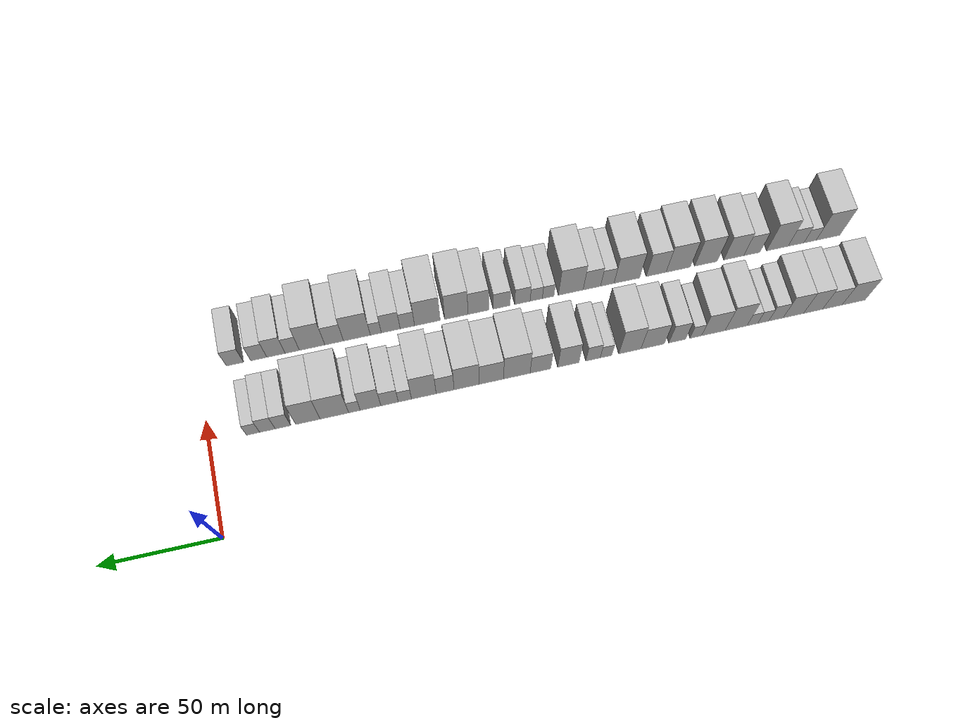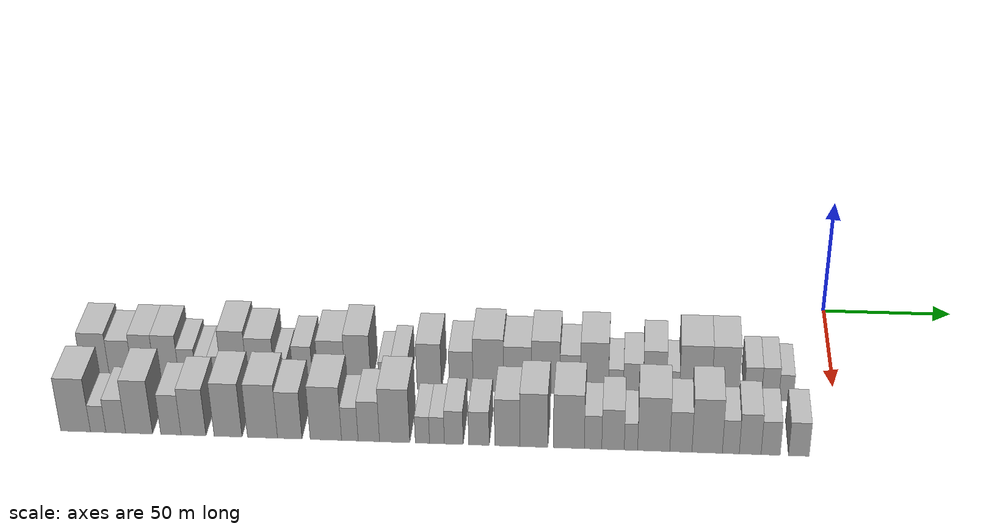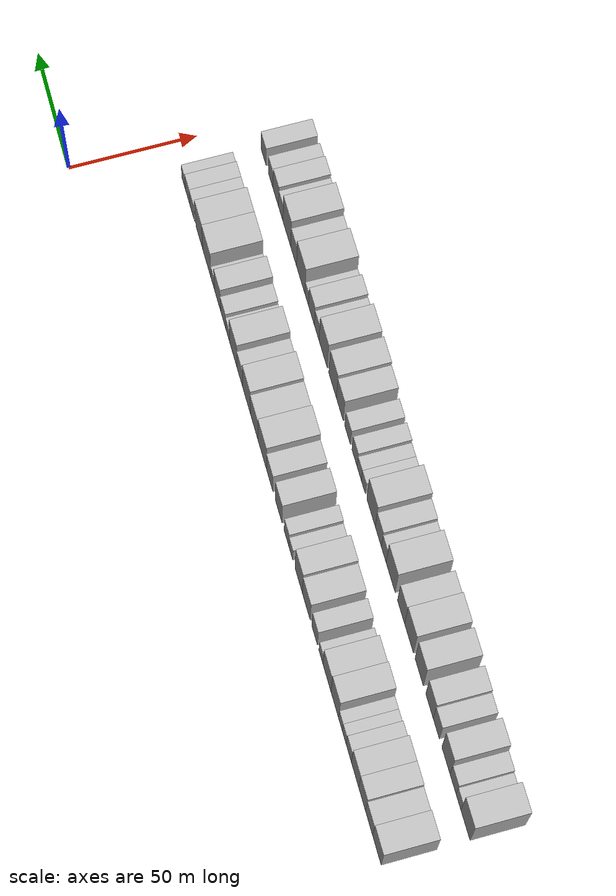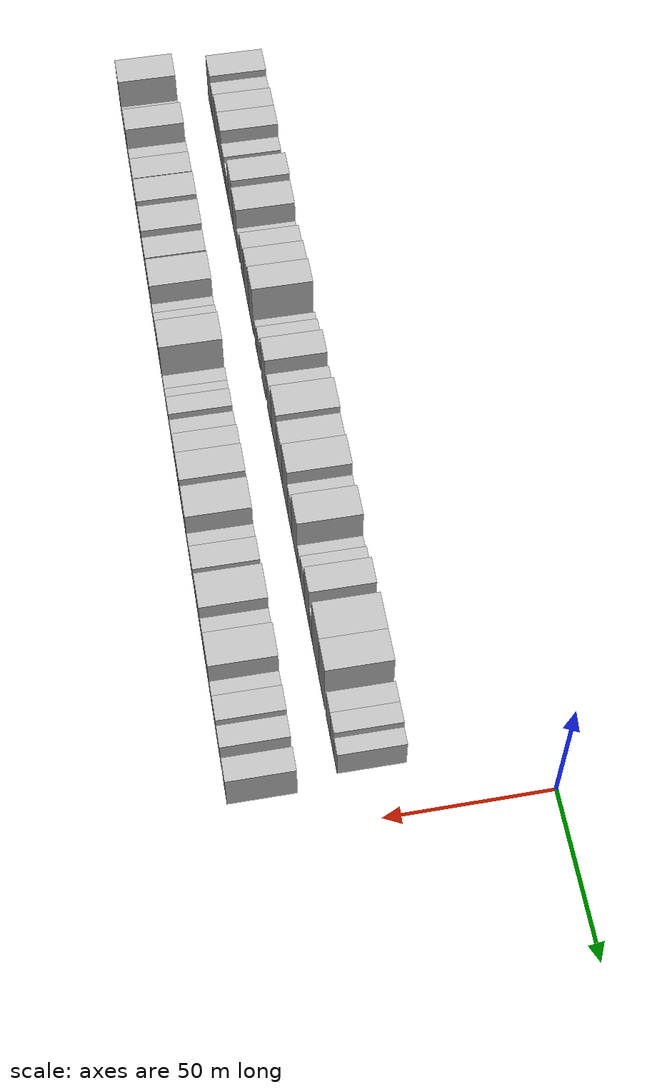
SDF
<sdf version="1.6">
 <world name="default">
  <model name="building_1">
   <static>1</static>
   <pose>50.0000 -278.7574 0 0.000000 0.000000 0.000000</pose>
   <link name="link">
    <pose>0 0 10.50 0 0 0</pose>
    <collision name="collision"><geometry><box><size>20.0000 10.4853 21.0000</size></box></geometry></collision>
    <visual name="visual">
     <cast_shadows>0</cast_shadows>
     <geometry><box><size>20.0000 10.4853 21.0000</size></box></geometry>
     <material>
      <script>
       <uri>model://HANNAS_wall/materials/scripts</uri>
       <uri>model://HANNAS_wall/materials/textures</uri>
       <name>vrc/HANNAS_wall</name>
      </script>
     </material>
    </visual>
   </link>
  </model>
  <model name="building_2">
   <static>1</static>
   <pose>50.0000 -269.0719 0 0.000000 0.000000 0.000000</pose>
   <link name="link">
    <pose>0 0 9.00 0 0 0</pose>
    <collision name="collision"><geometry><box><size>20.0000 8.8856 18.0000</size></box></geometry></collision>
    <visual name="visual">
     <cast_shadows>0</cast_shadows>
     <geometry><box><size>20.0000 8.8856 18.0000</size></box></geometry>
     <material>
      <script>
       <uri>model://HANNAS_wall/materials/scripts</uri>
       <uri>model://HANNAS_wall/materials/textures</uri>
       <name>vrc/HANNAS_wall</name>
      </script>
     </material>
    </visual>
   </link>
  </model>
  <model name="building_3">
   <static>1</static>
   <pose>50.0000 -260.3548 0 0.000000 0.000000 0.000000</pose>
   <link name="link">
    <pose>0 0 10.50 0 0 0</pose>
    <collision name="collision"><geometry><box><size>20.0000 8.5487 21.0000</size></box></geometry></collision>
    <visual name="visual">
     <cast_shadows>0</cast_shadows>
     <geometry><box><size>20.0000 8.5487 21.0000</size></box></geometry>
     <material>
      <script>
       <uri>model://HANNAS_wall/materials/scripts</uri>
       <uri>model://HANNAS_wall/materials/textures</uri>
       <name>vrc/HANNAS_wall</name>
      </script>
     </material>
    </visual>
   </link>
  </model>
  <model name="building_4">
   <static>1</static>
   <pose>50.0000 -251.4700 0 0.000000 0.000000 0.000000</pose>
   <link name="link">
    <pose>0 0 10.50 0 0 0</pose>
    <collision name="collision"><geometry><box><size>20.0000 9.2208 21.0000</size></box></geometry></collision>
    <visual name="visual">
     <cast_shadows>0</cast_shadows>
     <geometry><box><size>20.0000 9.2208 21.0000</size></box></geometry>
     <material>
      <script>
       <uri>model://HANNAS_wall/materials/scripts</uri>
       <uri>model://HANNAS_wall/materials/textures</uri>
       <name>vrc/HANNAS_wall</name>
      </script>
     </material>
    </visual>
   </link>
  </model>
  <model name="building_5">
   <static>1</static>
   <pose>50.0000 -243.5951 0 0.000000 0.000000 0.000000</pose>
   <link name="link">
    <pose>0 0 7.50 0 0 0</pose>
    <collision name="collision"><geometry><box><size>20.0000 6.5289 15.0000</size></box></geometry></collision>
    <visual name="visual">
     <cast_shadows>0</cast_shadows>
     <geometry><box><size>20.0000 6.5289 15.0000</size></box></geometry>
     <material>
      <script>
       <uri>model://HANNAS_wall/materials/scripts</uri>
       <uri>model://HANNAS_wall/materials/textures</uri>
       <name>vrc/HANNAS_wall</name>
      </script>
     </material>
    </visual>
   </link>
  </model>
  <model name="building_6">
   <static>1</static>
   <pose>50.0000 -237.8679 0 0.000000 0.000000 0.000000</pose>
   <link name="link">
    <pose>0 0 6.00 0 0 0</pose>
    <collision name="collision"><geometry><box><size>20.0000 4.9256 12.0000</size></box></geometry></collision>
    <visual name="visual">
     <cast_shadows>0</cast_shadows>
     <geometry><box><size>20.0000 4.9256 12.0000</size></box></geometry>
     <material>
      <script>
       <uri>model://HANNAS_wall/materials/scripts</uri>
       <uri>model://HANNAS_wall/materials/textures</uri>
       <name>vrc/HANNAS_wall</name>
      </script>
     </material>
    </visual>
   </link>
  </model>
  <model name="building_7">
   <static>1</static>
   <pose>50.0000 -233.0020 0 0.000000 0.000000 0.000000</pose>
   <link name="link">
    <pose>0 0 6.00 0 0 0</pose>
    <collision name="collision"><geometry><box><size>20.0000 4.8062 12.0000</size></box></geometry></collision>
    <visual name="visual">
     <cast_shadows>0</cast_shadows>
     <geometry><box><size>20.0000 4.8062 12.0000</size></box></geometry>
     <material>
      <script>
       <uri>model://HANNAS_wall/materials/scripts</uri>
       <uri>model://HANNAS_wall/materials/textures</uri>
       <name>vrc/HANNAS_wall</name>
      </script>
     </material>
    </visual>
   </link>
  </model>
  <model name="building_8">
   <static>1</static>
   <pose>50.0000 -225.7242 0 0.000000 0.000000 0.000000</pose>
   <link name="link">
    <pose>0 0 12.00 0 0 0</pose>
    <collision name="collision"><geometry><box><size>20.0000 9.7495 24.0000</size></box></geometry></collision>
    <visual name="visual">
     <cast_shadows>0</cast_shadows>
     <geometry><box><size>20.0000 9.7495 24.0000</size></box></geometry>
     <material>
      <script>
       <uri>model://HANNAS_wall/materials/scripts</uri>
       <uri>model://HANNAS_wall/materials/textures</uri>
       <name>vrc/HANNAS_wall</name>
      </script>
     </material>
    </visual>
   </link>
  </model>
  <model name="building_9">
   <static>1</static>
   <pose>50.0000 -215.6198 0 0.000000 0.000000 0.000000</pose>
   <link name="link">
    <pose>0 0 10.50 0 0 0</pose>
    <collision name="collision"><geometry><box><size>20.0000 10.4592 21.0000</size></box></geometry></collision>
    <visual name="visual">
     <cast_shadows>0</cast_shadows>
     <geometry><box><size>20.0000 10.4592 21.0000</size></box></geometry>
     <material>
      <script>
       <uri>model://HANNAS_wall/materials/scripts</uri>
       <uri>model://HANNAS_wall/materials/textures</uri>
       <name>vrc/HANNAS_wall</name>
      </script>
     </material>
    </visual>
   </link>
  </model>
  <model name="building_10">
   <static>1</static>
   <pose>50.0000 -207.8413 0 0.000000 0.000000 0.000000</pose>
   <link name="link">
    <pose>0 0 6.00 0 0 0</pose>
    <collision name="collision"><geometry><box><size>20.0000 5.0979 12.0000</size></box></geometry></collision>
    <visual name="visual">
     <cast_shadows>0</cast_shadows>
     <geometry><box><size>20.0000 5.0979 12.0000</size></box></geometry>
     <material>
      <script>
       <uri>model://HANNAS_wall/materials/scripts</uri>
       <uri>model://HANNAS_wall/materials/textures</uri>
       <name>vrc/HANNAS_wall</name>
      </script>
     </material>
    </visual>
   </link>
  </model>
  <model name="building_11">
   <static>1</static>
   <pose>50.0000 -199.5938 0 0.000000 0.000000 0.000000</pose>
   <link name="link">
    <pose>0 0 9.00 0 0 0</pose>
    <collision name="collision"><geometry><box><size>20.0000 7.3971 18.0000</size></box></geometry></collision>
    <visual name="visual">
     <cast_shadows>0</cast_shadows>
     <geometry><box><size>20.0000 7.3971 18.0000</size></box></geometry>
     <material>
      <script>
       <uri>model://HANNAS_wall/materials/scripts</uri>
       <uri>model://HANNAS_wall/materials/textures</uri>
       <name>vrc/HANNAS_wall</name>
      </script>
     </material>
    </visual>
   </link>
  </model>
  <model name="building_12">
   <static>1</static>
   <pose>50.0000 -188.7349 0 0.000000 0.000000 0.000000</pose>
   <link name="link">
    <pose>0 0 10.50 0 0 0</pose>
    <collision name="collision"><geometry><box><size>20.0000 10.3207 21.0000</size></box></geometry></collision>
    <visual name="visual">
     <cast_shadows>0</cast_shadows>
     <geometry><box><size>20.0000 10.3207 21.0000</size></box></geometry>
     <material>
      <script>
       <uri>model://HANNAS_wall/materials/scripts</uri>
       <uri>model://HANNAS_wall/materials/textures</uri>
       <name>vrc/HANNAS_wall</name>
      </script>
     </material>
    </visual>
   </link>
  </model>
  <model name="building_13">
   <static>1</static>
   <pose>50.0000 -178.7163 0 0.000000 0.000000 0.000000</pose>
   <link name="link">
    <pose>0 0 12.00 0 0 0</pose>
    <collision name="collision"><geometry><box><size>20.0000 9.7165 24.0000</size></box></geometry></collision>
    <visual name="visual">
     <cast_shadows>0</cast_shadows>
     <geometry><box><size>20.0000 9.7165 24.0000</size></box></geometry>
     <material>
      <script>
       <uri>model://HANNAS_wall/materials/scripts</uri>
       <uri>model://HANNAS_wall/materials/textures</uri>
       <name>vrc/HANNAS_wall</name>
      </script>
     </material>
    </visual>
   </link>
  </model>
  <model name="building_14">
   <static>1</static>
   <pose>50.0000 -168.2957 0 0.000000 0.000000 0.000000</pose>
   <link name="link">
    <pose>0 0 6.00 0 0 0</pose>
    <collision name="collision"><geometry><box><size>20.0000 5.1247 12.0000</size></box></geometry></collision>
    <visual name="visual">
     <cast_shadows>0</cast_shadows>
     <geometry><box><size>20.0000 5.1247 12.0000</size></box></geometry>
     <material>
      <script>
       <uri>model://HANNAS_wall/materials/scripts</uri>
       <uri>model://HANNAS_wall/materials/textures</uri>
       <name>vrc/HANNAS_wall</name>
      </script>
     </material>
    </visual>
   </link>
  </model>
  <model name="building_15">
   <static>1</static>
   <pose>50.0000 -162.6026 0 0.000000 0.000000 0.000000</pose>
   <link name="link">
    <pose>0 0 7.50 0 0 0</pose>
    <collision name="collision"><geometry><box><size>20.0000 6.2617 15.0000</size></box></geometry></collision>
    <visual name="visual">
     <cast_shadows>0</cast_shadows>
     <geometry><box><size>20.0000 6.2617 15.0000</size></box></geometry>
     <material>
      <script>
       <uri>model://HANNAS_wall/materials/scripts</uri>
       <uri>model://HANNAS_wall/materials/textures</uri>
       <name>vrc/HANNAS_wall</name>
      </script>
     </material>
    </visual>
   </link>
  </model>
  <model name="building_16">
   <static>1</static>
   <pose>50.0000 -151.8582 0 0.000000 0.000000 0.000000</pose>
   <link name="link">
    <pose>0 0 10.50 0 0 0</pose>
    <collision name="collision"><geometry><box><size>20.0000 9.2272 21.0000</size></box></geometry></collision>
    <visual name="visual">
     <cast_shadows>0</cast_shadows>
     <geometry><box><size>20.0000 9.2272 21.0000</size></box></geometry>
     <material>
      <script>
       <uri>model://HANNAS_wall/materials/scripts</uri>
       <uri>model://HANNAS_wall/materials/textures</uri>
       <name>vrc/HANNAS_wall</name>
      </script>
     </material>
    </visual>
   </link>
  </model>
  <model name="building_17">
   <static>1</static>
   <pose>50.0000 -139.7778 0 0.000000 0.000000 0.000000</pose>
   <link name="link">
    <pose>0 0 9.00 0 0 0</pose>
    <collision name="collision"><geometry><box><size>20.0000 8.9334 18.0000</size></box></geometry></collision>
    <visual name="visual">
     <cast_shadows>0</cast_shadows>
     <geometry><box><size>20.0000 8.9334 18.0000</size></box></geometry>
     <material>
      <script>
       <uri>model://HANNAS_wall/materials/scripts</uri>
       <uri>model://HANNAS_wall/materials/textures</uri>
       <name>vrc/HANNAS_wall</name>
      </script>
     </material>
    </visual>
   </link>
  </model>
  <model name="building_18">
   <static>1</static>
   <pose>50.0000 -129.5712 0 0.000000 0.000000 0.000000</pose>
   <link name="link">
    <pose>0 0 12.00 0 0 0</pose>
    <collision name="collision"><geometry><box><size>20.0000 11.4799 24.0000</size></box></geometry></collision>
    <visual name="visual">
     <cast_shadows>0</cast_shadows>
     <geometry><box><size>20.0000 11.4799 24.0000</size></box></geometry>
     <material>
      <script>
       <uri>model://HANNAS_wall/materials/scripts</uri>
       <uri>model://HANNAS_wall/materials/textures</uri>
       <name>vrc/HANNAS_wall</name>
      </script>
     </material>
    </visual>
   </link>
  </model>
  <model name="building_19">
   <static>1</static>
   <pose>50.0000 -118.5897 0 0.000000 0.000000 0.000000</pose>
   <link name="link">
    <pose>0 0 10.50 0 0 0</pose>
    <collision name="collision"><geometry><box><size>20.0000 10.4830 21.0000</size></box></geometry></collision>
    <visual name="visual">
     <cast_shadows>0</cast_shadows>
     <geometry><box><size>20.0000 10.4830 21.0000</size></box></geometry>
     <material>
      <script>
       <uri>model://HANNAS_wall/materials/scripts</uri>
       <uri>model://HANNAS_wall/materials/textures</uri>
       <name>vrc/HANNAS_wall</name>
      </script>
     </material>
    </visual>
   </link>
  </model>
  <model name="building_20">
   <static>1</static>
   <pose>50.0000 -107.9969 0 0.000000 0.000000 0.000000</pose>
   <link name="link">
    <pose>0 0 12.00 0 0 0</pose>
    <collision name="collision"><geometry><box><size>20.0000 10.7027 24.0000</size></box></geometry></collision>
    <visual name="visual">
     <cast_shadows>0</cast_shadows>
     <geometry><box><size>20.0000 10.7027 24.0000</size></box></geometry>
     <material>
      <script>
       <uri>model://HANNAS_wall/materials/scripts</uri>
       <uri>model://HANNAS_wall/materials/textures</uri>
       <name>vrc/HANNAS_wall</name>
      </script>
     </material>
    </visual>
   </link>
  </model>
  <model name="building_21">
   <static>1</static>
   <pose>50.0000 -98.8273 0 0.000000 0.000000 0.000000</pose>
   <link name="link">
    <pose>0 0 9.00 0 0 0</pose>
    <collision name="collision"><geometry><box><size>20.0000 7.6364 18.0000</size></box></geometry></collision>
    <visual name="visual">
     <cast_shadows>0</cast_shadows>
     <geometry><box><size>20.0000 7.6364 18.0000</size></box></geometry>
     <material>
      <script>
       <uri>model://HANNAS_wall/materials/scripts</uri>
       <uri>model://HANNAS_wall/materials/textures</uri>
       <name>vrc/HANNAS_wall</name>
      </script>
     </material>
    </visual>
   </link>
  </model>
  <model name="building_22">
   <static>1</static>
   <pose>50.0000 -89.7715 0 0.000000 0.000000 0.000000</pose>
   <link name="link">
    <pose>0 0 12.00 0 0 0</pose>
    <collision name="collision"><geometry><box><size>20.0000 10.4751 24.0000</size></box></geometry></collision>
    <visual name="visual">
     <cast_shadows>0</cast_shadows>
     <geometry><box><size>20.0000 10.4751 24.0000</size></box></geometry>
     <material>
      <script>
       <uri>model://HANNAS_wall/materials/scripts</uri>
       <uri>model://HANNAS_wall/materials/textures</uri>
       <name>vrc/HANNAS_wall</name>
      </script>
     </material>
    </visual>
   </link>
  </model>
  <model name="building_23">
   <static>1</static>
   <pose>50.0000 -81.7449 0 0.000000 0.000000 0.000000</pose>
   <link name="link">
    <pose>0 0 6.00 0 0 0</pose>
    <collision name="collision"><geometry><box><size>20.0000 5.5781 12.0000</size></box></geometry></collision>
    <visual name="visual">
     <cast_shadows>0</cast_shadows>
     <geometry><box><size>20.0000 5.5781 12.0000</size></box></geometry>
     <material>
      <script>
       <uri>model://HANNAS_wall/materials/scripts</uri>
       <uri>model://HANNAS_wall/materials/textures</uri>
       <name>vrc/HANNAS_wall</name>
      </script>
     </material>
    </visual>
   </link>
  </model>
  <model name="building_24">
   <static>1</static>
   <pose>50.0000 -75.2791 0 0.000000 0.000000 0.000000</pose>
   <link name="link">
    <pose>0 0 7.50 0 0 0</pose>
    <collision name="collision"><geometry><box><size>20.0000 7.3536 15.0000</size></box></geometry></collision>
    <visual name="visual">
     <cast_shadows>0</cast_shadows>
     <geometry><box><size>20.0000 7.3536 15.0000</size></box></geometry>
     <material>
      <script>
       <uri>model://HANNAS_wall/materials/scripts</uri>
       <uri>model://HANNAS_wall/materials/textures</uri>
       <name>vrc/HANNAS_wall</name>
      </script>
     </material>
    </visual>
   </link>
  </model>
  <model name="building_25">
   <static>1</static>
   <pose>50.0000 -67.2632 0 0.000000 0.000000 0.000000</pose>
   <link name="link">
    <pose>0 0 10.50 0 0 0</pose>
    <collision name="collision"><geometry><box><size>20.0000 8.6782 21.0000</size></box></geometry></collision>
    <visual name="visual">
     <cast_shadows>0</cast_shadows>
     <geometry><box><size>20.0000 8.6782 21.0000</size></box></geometry>
     <material>
      <script>
       <uri>model://HANNAS_wall/materials/scripts</uri>
       <uri>model://HANNAS_wall/materials/textures</uri>
       <name>vrc/HANNAS_wall</name>
      </script>
     </material>
    </visual>
   </link>
  </model>
  <model name="building_26">
   <static>1</static>
   <pose>50.0000 -60.4848 0 0.000000 0.000000 0.000000</pose>
   <link name="link">
    <pose>0 0 6.00 0 0 0</pose>
    <collision name="collision"><geometry><box><size>20.0000 4.8786 12.0000</size></box></geometry></collision>
    <visual name="visual">
     <cast_shadows>0</cast_shadows>
     <geometry><box><size>20.0000 4.8786 12.0000</size></box></geometry>
     <material>
      <script>
       <uri>model://HANNAS_wall/materials/scripts</uri>
       <uri>model://HANNAS_wall/materials/textures</uri>
       <name>vrc/HANNAS_wall</name>
      </script>
     </material>
    </visual>
   </link>
  </model>
  <model name="building_27">
   <static>1</static>
   <pose>50.0000 -52.0567 0 0.000000 0.000000 0.000000</pose>
   <link name="link">
    <pose>0 0 12.00 0 0 0</pose>
    <collision name="collision"><geometry><box><size>20.0000 11.9777 24.0000</size></box></geometry></collision>
    <visual name="visual">
     <cast_shadows>0</cast_shadows>
     <geometry><box><size>20.0000 11.9777 24.0000</size></box></geometry>
     <material>
      <script>
       <uri>model://HANNAS_wall/materials/scripts</uri>
       <uri>model://HANNAS_wall/materials/textures</uri>
       <name>vrc/HANNAS_wall</name>
      </script>
     </material>
    </visual>
   </link>
  </model>
  <model name="building_28">
   <static>1</static>
   <pose>50.0000 -40.9466 0 0.000000 0.000000 0.000000</pose>
   <link name="link">
    <pose>0 0 12.00 0 0 0</pose>
    <collision name="collision"><geometry><box><size>20.0000 10.2426 24.0000</size></box></geometry></collision>
    <visual name="visual">
     <cast_shadows>0</cast_shadows>
     <geometry><box><size>20.0000 10.2426 24.0000</size></box></geometry>
     <material>
      <script>
       <uri>model://HANNAS_wall/materials/scripts</uri>
       <uri>model://HANNAS_wall/materials/textures</uri>
       <name>vrc/HANNAS_wall</name>
      </script>
     </material>
    </visual>
   </link>
  </model>
  <model name="building_29">
   <static>1</static>
   <pose>50.0000 -30.5778 0 0.000000 0.000000 0.000000</pose>
   <link name="link">
    <pose>0 0 7.50 0 0 0</pose>
    <collision name="collision"><geometry><box><size>20.0000 6.4950 15.0000</size></box></geometry></collision>
    <visual name="visual">
     <cast_shadows>0</cast_shadows>
     <geometry><box><size>20.0000 6.4950 15.0000</size></box></geometry>
     <material>
      <script>
       <uri>model://HANNAS_wall/materials/scripts</uri>
       <uri>model://HANNAS_wall/materials/textures</uri>
       <name>vrc/HANNAS_wall</name>
      </script>
     </material>
    </visual>
   </link>
  </model>
  <model name="building_30">
   <static>1</static>
   <pose>50.0000 -24.1028 0 0.000000 0.000000 0.000000</pose>
   <link name="link">
    <pose>0 0 7.50 0 0 0</pose>
    <collision name="collision"><geometry><box><size>20.0000 6.4550 15.0000</size></box></geometry></collision>
    <visual name="visual">
     <cast_shadows>0</cast_shadows>
     <geometry><box><size>20.0000 6.4550 15.0000</size></box></geometry>
     <material>
      <script>
       <uri>model://HANNAS_wall/materials/scripts</uri>
       <uri>model://HANNAS_wall/materials/textures</uri>
       <name>vrc/HANNAS_wall</name>
      </script>
     </material>
    </visual>
   </link>
  </model>
  <model name="building_31">
   <static>1</static>
   <pose>50.0000 -18.1792 0 0.000000 0.000000 0.000000</pose>
   <link name="link">
    <pose>0 0 6.00 0 0 0</pose>
    <collision name="collision"><geometry><box><size>20.0000 5.3922 12.0000</size></box></geometry></collision>
    <visual name="visual">
     <cast_shadows>0</cast_shadows>
     <geometry><box><size>20.0000 5.3922 12.0000</size></box></geometry>
     <material>
      <script>
       <uri>model://HANNAS_wall/materials/scripts</uri>
       <uri>model://HANNAS_wall/materials/textures</uri>
       <name>vrc/HANNAS_wall</name>
      </script>
     </material>
    </visual>
   </link>
  </model>
  <model name="building_62">
   <static>1</static>
   <pose>82.0000 -278.5064 0 0.000000 0.000000 0.000000</pose>
   <link name="link">
    <pose>0 0 12.00 0 0 0</pose>
    <collision name="collision"><geometry><box><size>20.0000 10.9872 24.0000</size></box></geometry></collision>
    <visual name="visual">
     <cast_shadows>0</cast_shadows>
     <geometry><box><size>20.0000 10.9872 24.0000</size></box></geometry>
     <material>
      <script>
       <uri>model://HANNAS_wall/materials/scripts</uri>
       <uri>model://HANNAS_wall/materials/textures</uri>
       <name>vrc/HANNAS_wall</name>
      </script>
     </material>
    </visual>
   </link>
  </model>
  <model name="building_63">
   <static>1</static>
   <pose>82.0000 -270.1554 0 0.000000 0.000000 0.000000</pose>
   <link name="link">
    <pose>0 0 6.00 0 0 0</pose>
    <collision name="collision"><geometry><box><size>20.0000 5.7147 12.0000</size></box></geometry></collision>
    <visual name="visual">
     <cast_shadows>0</cast_shadows>
     <geometry><box><size>20.0000 5.7147 12.0000</size></box></geometry>
     <material>
      <script>
       <uri>model://HANNAS_wall/materials/scripts</uri>
       <uri>model://HANNAS_wall/materials/textures</uri>
       <name>vrc/HANNAS_wall</name>
      </script>
     </material>
    </visual>
   </link>
  </model>
  <model name="building_64">
   <static>1</static>
   <pose>82.0000 -263.6507 0 0.000000 0.000000 0.000000</pose>
   <link name="link">
    <pose>0 0 7.50 0 0 0</pose>
    <collision name="collision"><geometry><box><size>20.0000 7.2947 15.0000</size></box></geometry></collision>
    <visual name="visual">
     <cast_shadows>0</cast_shadows>
     <geometry><box><size>20.0000 7.2947 15.0000</size></box></geometry>
     <material>
      <script>
       <uri>model://HANNAS_wall/materials/scripts</uri>
       <uri>model://HANNAS_wall/materials/textures</uri>
       <name>vrc/HANNAS_wall</name>
      </script>
     </material>
    </visual>
   </link>
  </model>
  <model name="building_65">
   <static>1</static>
   <pose>82.0000 -255.0314 0 0.000000 0.000000 0.000000</pose>
   <link name="link">
    <pose>0 0 12.00 0 0 0</pose>
    <collision name="collision"><geometry><box><size>20.0000 9.9439 24.0000</size></box></geometry></collision>
    <visual name="visual">
     <cast_shadows>0</cast_shadows>
     <geometry><box><size>20.0000 9.9439 24.0000</size></box></geometry>
     <material>
      <script>
       <uri>model://HANNAS_wall/materials/scripts</uri>
       <uri>model://HANNAS_wall/materials/textures</uri>
       <name>vrc/HANNAS_wall</name>
      </script>
     </material>
    </visual>
   </link>
  </model>
  <model name="building_66">
   <static>1</static>
   <pose>82.0000 -243.3188 0 0.000000 0.000000 0.000000</pose>
   <link name="link">
    <pose>0 0 9.00 0 0 0</pose>
    <collision name="collision"><geometry><box><size>20.0000 7.4813 18.0000</size></box></geometry></collision>
    <visual name="visual">
     <cast_shadows>0</cast_shadows>
     <geometry><box><size>20.0000 7.4813 18.0000</size></box></geometry>
     <material>
      <script>
       <uri>model://HANNAS_wall/materials/scripts</uri>
       <uri>model://HANNAS_wall/materials/textures</uri>
       <name>vrc/HANNAS_wall</name>
      </script>
     </material>
    </visual>
   </link>
  </model>
  <model name="building_67">
   <static>1</static>
   <pose>82.0000 -234.9915 0 0.000000 0.000000 0.000000</pose>
   <link name="link">
    <pose>0 0 10.50 0 0 0</pose>
    <collision name="collision"><geometry><box><size>20.0000 9.1733 21.0000</size></box></geometry></collision>
    <visual name="visual">
     <cast_shadows>0</cast_shadows>
     <geometry><box><size>20.0000 9.1733 21.0000</size></box></geometry>
     <material>
      <script>
       <uri>model://HANNAS_wall/materials/scripts</uri>
       <uri>model://HANNAS_wall/materials/textures</uri>
       <name>vrc/HANNAS_wall</name>
      </script>
     </material>
    </visual>
   </link>
  </model>
  <model name="building_68">
   <static>1</static>
   <pose>82.0000 -222.2801 0 0.000000 0.000000 0.000000</pose>
   <link name="link">
    <pose>0 0 12.00 0 0 0</pose>
    <collision name="collision"><geometry><box><size>20.0000 10.2495 24.0000</size></box></geometry></collision>
    <visual name="visual">
     <cast_shadows>0</cast_shadows>
     <geometry><box><size>20.0000 10.2495 24.0000</size></box></geometry>
     <material>
      <script>
       <uri>model://HANNAS_wall/materials/scripts</uri>
       <uri>model://HANNAS_wall/materials/textures</uri>
       <name>vrc/HANNAS_wall</name>
      </script>
     </material>
    </visual>
   </link>
  </model>
  <model name="building_69">
   <static>1</static>
   <pose>82.0000 -209.6443 0 0.000000 0.000000 0.000000</pose>
   <link name="link">
    <pose>0 0 12.00 0 0 0</pose>
    <collision name="collision"><geometry><box><size>20.0000 11.0221 24.0000</size></box></geometry></collision>
    <visual name="visual">
     <cast_shadows>0</cast_shadows>
     <geometry><box><size>20.0000 11.0221 24.0000</size></box></geometry>
     <material>
      <script>
       <uri>model://HANNAS_wall/materials/scripts</uri>
       <uri>model://HANNAS_wall/materials/textures</uri>
       <name>vrc/HANNAS_wall</name>
      </script>
     </material>
    </visual>
   </link>
  </model>
  <model name="building_70">
   <static>1</static>
   <pose>82.0000 -199.6483 0 0.000000 0.000000 0.000000</pose>
   <link name="link">
    <pose>0 0 10.50 0 0 0</pose>
    <collision name="collision"><geometry><box><size>20.0000 8.9700 21.0000</size></box></geometry></collision>
    <visual name="visual">
     <cast_shadows>0</cast_shadows>
     <geometry><box><size>20.0000 8.9700 21.0000</size></box></geometry>
     <material>
      <script>
       <uri>model://HANNAS_wall/materials/scripts</uri>
       <uri>model://HANNAS_wall/materials/textures</uri>
       <name>vrc/HANNAS_wall</name>
      </script>
     </material>
    </visual>
   </link>
  </model>
  <model name="building_71">
   <static>1</static>
   <pose>82.0000 -186.4171 0 0.000000 0.000000 0.000000</pose>
   <link name="link">
    <pose>0 0 12.00 0 0 0</pose>
    <collision name="collision"><geometry><box><size>20.0000 11.4924 24.0000</size></box></geometry></collision>
    <visual name="visual">
     <cast_shadows>0</cast_shadows>
     <geometry><box><size>20.0000 11.4924 24.0000</size></box></geometry>
     <material>
      <script>
       <uri>model://HANNAS_wall/materials/scripts</uri>
       <uri>model://HANNAS_wall/materials/textures</uri>
       <name>vrc/HANNAS_wall</name>
      </script>
     </material>
    </visual>
   </link>
  </model>
  <model name="building_72">
   <static>1</static>
   <pose>82.0000 -177.6485 0 0.000000 0.000000 0.000000</pose>
   <link name="link">
    <pose>0 0 7.50 0 0 0</pose>
    <collision name="collision"><geometry><box><size>20.0000 6.0447 15.0000</size></box></geometry></collision>
    <visual name="visual">
     <cast_shadows>0</cast_shadows>
     <geometry><box><size>20.0000 6.0447 15.0000</size></box></geometry>
     <material>
      <script>
       <uri>model://HANNAS_wall/materials/scripts</uri>
       <uri>model://HANNAS_wall/materials/textures</uri>
       <name>vrc/HANNAS_wall</name>
      </script>
     </material>
    </visual>
   </link>
  </model>
  <model name="building_73">
   <static>1</static>
   <pose>82.0000 -170.7185 0 0.000000 0.000000 0.000000</pose>
   <link name="link">
    <pose>0 0 9.00 0 0 0</pose>
    <collision name="collision"><geometry><box><size>20.0000 7.8152 18.0000</size></box></geometry></collision>
    <visual name="visual">
     <cast_shadows>0</cast_shadows>
     <geometry><box><size>20.0000 7.8152 18.0000</size></box></geometry>
     <material>
      <script>
       <uri>model://HANNAS_wall/materials/scripts</uri>
       <uri>model://HANNAS_wall/materials/textures</uri>
       <name>vrc/HANNAS_wall</name>
      </script>
     </material>
    </visual>
   </link>
  </model>
  <model name="building_74">
   <static>1</static>
   <pose>82.0000 -161.2894 0 0.000000 0.000000 0.000000</pose>
   <link name="link">
    <pose>0 0 12.00 0 0 0</pose>
    <collision name="collision"><geometry><box><size>20.0000 11.0430 24.0000</size></box></geometry></collision>
    <visual name="visual">
     <cast_shadows>0</cast_shadows>
     <geometry><box><size>20.0000 11.0430 24.0000</size></box></geometry>
     <material>
      <script>
       <uri>model://HANNAS_wall/materials/scripts</uri>
       <uri>model://HANNAS_wall/materials/textures</uri>
       <name>vrc/HANNAS_wall</name>
      </script>
     </material>
    </visual>
   </link>
  </model>
  <model name="building_75">
   <static>1</static>
   <pose>82.0000 -151.1847 0 0.000000 0.000000 0.000000</pose>
   <link name="link">
    <pose>0 0 6.00 0 0 0</pose>
    <collision name="collision"><geometry><box><size>20.0000 5.1665 12.0000</size></box></geometry></collision>
    <visual name="visual">
     <cast_shadows>0</cast_shadows>
     <geometry><box><size>20.0000 5.1665 12.0000</size></box></geometry>
     <material>
      <script>
       <uri>model://HANNAS_wall/materials/scripts</uri>
       <uri>model://HANNAS_wall/materials/textures</uri>
       <name>vrc/HANNAS_wall</name>
      </script>
     </material>
    </visual>
   </link>
  </model>
  <model name="building_76">
   <static>1</static>
   <pose>82.0000 -145.8972 0 0.000000 0.000000 0.000000</pose>
   <link name="link">
    <pose>0 0 6.00 0 0 0</pose>
    <collision name="collision"><geometry><box><size>20.0000 5.4085 12.0000</size></box></geometry></collision>
    <visual name="visual">
     <cast_shadows>0</cast_shadows>
     <geometry><box><size>20.0000 5.4085 12.0000</size></box></geometry>
     <material>
      <script>
       <uri>model://HANNAS_wall/materials/scripts</uri>
       <uri>model://HANNAS_wall/materials/textures</uri>
       <name>vrc/HANNAS_wall</name>
      </script>
     </material>
    </visual>
   </link>
  </model>
  <model name="building_77">
   <static>1</static>
   <pose>82.0000 -139.7655 0 0.000000 0.000000 0.000000</pose>
   <link name="link">
    <pose>0 0 7.50 0 0 0</pose>
    <collision name="collision"><geometry><box><size>20.0000 6.8549 15.0000</size></box></geometry></collision>
    <visual name="visual">
     <cast_shadows>0</cast_shadows>
     <geometry><box><size>20.0000 6.8549 15.0000</size></box></geometry>
     <material>
      <script>
       <uri>model://HANNAS_wall/materials/scripts</uri>
       <uri>model://HANNAS_wall/materials/textures</uri>
       <name>vrc/HANNAS_wall</name>
      </script>
     </material>
    </visual>
   </link>
  </model>
  <model name="building_78">
   <static>1</static>
   <pose>82.0000 -130.6021 0 0.000000 0.000000 0.000000</pose>
   <link name="link">
    <pose>0 0 7.50 0 0 0</pose>
    <collision name="collision"><geometry><box><size>20.0000 7.4719 15.0000</size></box></geometry></collision>
    <visual name="visual">
     <cast_shadows>0</cast_shadows>
     <geometry><box><size>20.0000 7.4719 15.0000</size></box></geometry>
     <material>
      <script>
       <uri>model://HANNAS_wall/materials/scripts</uri>
       <uri>model://HANNAS_wall/materials/textures</uri>
       <name>vrc/HANNAS_wall</name>
      </script>
     </material>
    </visual>
   </link>
  </model>
  <model name="building_79">
   <static>1</static>
   <pose>82.0000 -120.3232 0 0.000000 0.000000 0.000000</pose>
   <link name="link">
    <pose>0 0 10.50 0 0 0</pose>
    <collision name="collision"><geometry><box><size>20.0000 9.0859 21.0000</size></box></geometry></collision>
    <visual name="visual">
     <cast_shadows>0</cast_shadows>
     <geometry><box><size>20.0000 9.0859 21.0000</size></box></geometry>
     <material>
      <script>
       <uri>model://HANNAS_wall/materials/scripts</uri>
       <uri>model://HANNAS_wall/materials/textures</uri>
       <name>vrc/HANNAS_wall</name>
      </script>
     </material>
    </visual>
   </link>
  </model>
  <model name="building_80">
   <static>1</static>
   <pose>82.0000 -110.6957 0 0.000000 0.000000 0.000000</pose>
   <link name="link">
    <pose>0 0 12.00 0 0 0</pose>
    <collision name="collision"><geometry><box><size>20.0000 10.1691 24.0000</size></box></geometry></collision>
    <visual name="visual">
     <cast_shadows>0</cast_shadows>
     <geometry><box><size>20.0000 10.1691 24.0000</size></box></geometry>
     <material>
      <script>
       <uri>model://HANNAS_wall/materials/scripts</uri>
       <uri>model://HANNAS_wall/materials/textures</uri>
       <name>vrc/HANNAS_wall</name>
      </script>
     </material>
    </visual>
   </link>
  </model>
  <model name="building_81">
   <static>1</static>
   <pose>82.0000 -98.0328 0 0.000000 0.000000 0.000000</pose>
   <link name="link">
    <pose>0 0 12.00 0 0 0</pose>
    <collision name="collision"><geometry><box><size>20.0000 11.1566 24.0000</size></box></geometry></collision>
    <visual name="visual">
     <cast_shadows>0</cast_shadows>
     <geometry><box><size>20.0000 11.1566 24.0000</size></box></geometry>
     <material>
      <script>
       <uri>model://HANNAS_wall/materials/scripts</uri>
       <uri>model://HANNAS_wall/materials/textures</uri>
       <name>vrc/HANNAS_wall</name>
      </script>
     </material>
    </visual>
   </link>
  </model>
  <model name="building_82">
   <static>1</static>
   <pose>82.0000 -89.3100 0 0.000000 0.000000 0.000000</pose>
   <link name="link">
    <pose>0 0 7.50 0 0 0</pose>
    <collision name="collision"><geometry><box><size>20.0000 6.2890 15.0000</size></box></geometry></collision>
    <visual name="visual">
     <cast_shadows>0</cast_shadows>
     <geometry><box><size>20.0000 6.2890 15.0000</size></box></geometry>
     <material>
      <script>
       <uri>model://HANNAS_wall/materials/scripts</uri>
       <uri>model://HANNAS_wall/materials/textures</uri>
       <name>vrc/HANNAS_wall</name>
      </script>
     </material>
    </visual>
   </link>
  </model>
  <model name="building_83">
   <static>1</static>
   <pose>82.0000 -82.1052 0 0.000000 0.000000 0.000000</pose>
   <link name="link">
    <pose>0 0 9.00 0 0 0</pose>
    <collision name="collision"><geometry><box><size>20.0000 8.1206 18.0000</size></box></geometry></collision>
    <visual name="visual">
     <cast_shadows>0</cast_shadows>
     <geometry><box><size>20.0000 8.1206 18.0000</size></box></geometry>
     <material>
      <script>
       <uri>model://HANNAS_wall/materials/scripts</uri>
       <uri>model://HANNAS_wall/materials/textures</uri>
       <name>vrc/HANNAS_wall</name>
      </script>
     </material>
    </visual>
   </link>
  </model>
  <model name="building_84">
   <static>1</static>
   <pose>82.0000 -75.6433 0 0.000000 0.000000 0.000000</pose>
   <link name="link">
    <pose>0 0 6.00 0 0 0</pose>
    <collision name="collision"><geometry><box><size>20.0000 4.8030 12.0000</size></box></geometry></collision>
    <visual name="visual">
     <cast_shadows>0</cast_shadows>
     <geometry><box><size>20.0000 4.8030 12.0000</size></box></geometry>
     <material>
      <script>
       <uri>model://HANNAS_wall/materials/scripts</uri>
       <uri>model://HANNAS_wall/materials/textures</uri>
       <name>vrc/HANNAS_wall</name>
      </script>
     </material>
    </visual>
   </link>
  </model>
  <model name="building_85">
   <static>1</static>
   <pose>82.0000 -67.4440 0 0.000000 0.000000 0.000000</pose>
   <link name="link">
    <pose>0 0 12.00 0 0 0</pose>
    <collision name="collision"><geometry><box><size>20.0000 11.5957 24.0000</size></box></geometry></collision>
    <visual name="visual">
     <cast_shadows>0</cast_shadows>
     <geometry><box><size>20.0000 11.5957 24.0000</size></box></geometry>
     <material>
      <script>
       <uri>model://HANNAS_wall/materials/scripts</uri>
       <uri>model://HANNAS_wall/materials/textures</uri>
       <name>vrc/HANNAS_wall</name>
      </script>
     </material>
    </visual>
   </link>
  </model>
  <model name="building_86">
   <static>1</static>
   <pose>82.0000 -57.6537 0 0.000000 0.000000 0.000000</pose>
   <link name="link">
    <pose>0 0 9.00 0 0 0</pose>
    <collision name="collision"><geometry><box><size>20.0000 7.9849 18.0000</size></box></geometry></collision>
    <visual name="visual">
     <cast_shadows>0</cast_shadows>
     <geometry><box><size>20.0000 7.9849 18.0000</size></box></geometry>
     <material>
      <script>
       <uri>model://HANNAS_wall/materials/scripts</uri>
       <uri>model://HANNAS_wall/materials/textures</uri>
       <name>vrc/HANNAS_wall</name>
      </script>
     </material>
    </visual>
   </link>
  </model>
  <model name="building_87">
   <static>1</static>
   <pose>82.0000 -48.2022 0 0.000000 0.000000 0.000000</pose>
   <link name="link">
    <pose>0 0 12.00 0 0 0</pose>
    <collision name="collision"><geometry><box><size>20.0000 10.9182 24.0000</size></box></geometry></collision>
    <visual name="visual">
     <cast_shadows>0</cast_shadows>
     <geometry><box><size>20.0000 10.9182 24.0000</size></box></geometry>
     <material>
      <script>
       <uri>model://HANNAS_wall/materials/scripts</uri>
       <uri>model://HANNAS_wall/materials/textures</uri>
       <name>vrc/HANNAS_wall</name>
      </script>
     </material>
    </visual>
   </link>
  </model>
  <model name="building_88">
   <static>1</static>
   <pose>82.0000 -39.7036 0 0.000000 0.000000 0.000000</pose>
   <link name="link">
    <pose>0 0 7.50 0 0 0</pose>
    <collision name="collision"><geometry><box><size>20.0000 6.0790 15.0000</size></box></geometry></collision>
    <visual name="visual">
     <cast_shadows>0</cast_shadows>
     <geometry><box><size>20.0000 6.0790 15.0000</size></box></geometry>
     <material>
      <script>
       <uri>model://HANNAS_wall/materials/scripts</uri>
       <uri>model://HANNAS_wall/materials/textures</uri>
       <name>vrc/HANNAS_wall</name>
      </script>
     </material>
    </visual>
   </link>
  </model>
  <model name="building_89">
   <static>1</static>
   <pose>82.0000 -32.7507 0 0.000000 0.000000 0.000000</pose>
   <link name="link">
    <pose>0 0 9.00 0 0 0</pose>
    <collision name="collision"><geometry><box><size>20.0000 7.8268 18.0000</size></box></geometry></collision>
    <visual name="visual">
     <cast_shadows>0</cast_shadows>
     <geometry><box><size>20.0000 7.8268 18.0000</size></box></geometry>
     <material>
      <script>
       <uri>model://HANNAS_wall/materials/scripts</uri>
       <uri>model://HANNAS_wall/materials/textures</uri>
       <name>vrc/HANNAS_wall</name>
      </script>
     </material>
    </visual>
   </link>
  </model>
  <model name="building_90">
   <static>1</static>
   <pose>82.0000 -25.4024 0 0.000000 0.000000 0.000000</pose>
   <link name="link">
    <pose>0 0 7.50 0 0 0</pose>
    <collision name="collision"><geometry><box><size>20.0000 6.8698 15.0000</size></box></geometry></collision>
    <visual name="visual">
     <cast_shadows>0</cast_shadows>
     <geometry><box><size>20.0000 6.8698 15.0000</size></box></geometry>
     <material>
      <script>
       <uri>model://HANNAS_wall/materials/scripts</uri>
       <uri>model://HANNAS_wall/materials/textures</uri>
       <name>vrc/HANNAS_wall</name>
      </script>
     </material>
    </visual>
   </link>
  </model>
  <model name="building_91">
   <static>1</static>
   <pose>82.0000 -15.2840 0 0.000000 0.000000 0.000000</pose>
   <link name="link">
    <pose>0 0 7.50 0 0 0</pose>
    <collision name="collision"><geometry><box><size>20.0000 7.3669 15.0000</size></box></geometry></collision>
    <visual name="visual">
     <cast_shadows>0</cast_shadows>
     <geometry><box><size>20.0000 7.3669 15.0000</size></box></geometry>
     <material>
      <script>
       <uri>model://HANNAS_wall/materials/scripts</uri>
       <uri>model://HANNAS_wall/materials/textures</uri>
       <name>vrc/HANNAS_wall</name>
      </script>
     </material>
    </visual>
   </link>
  </model>
 </world>
</sdf>
